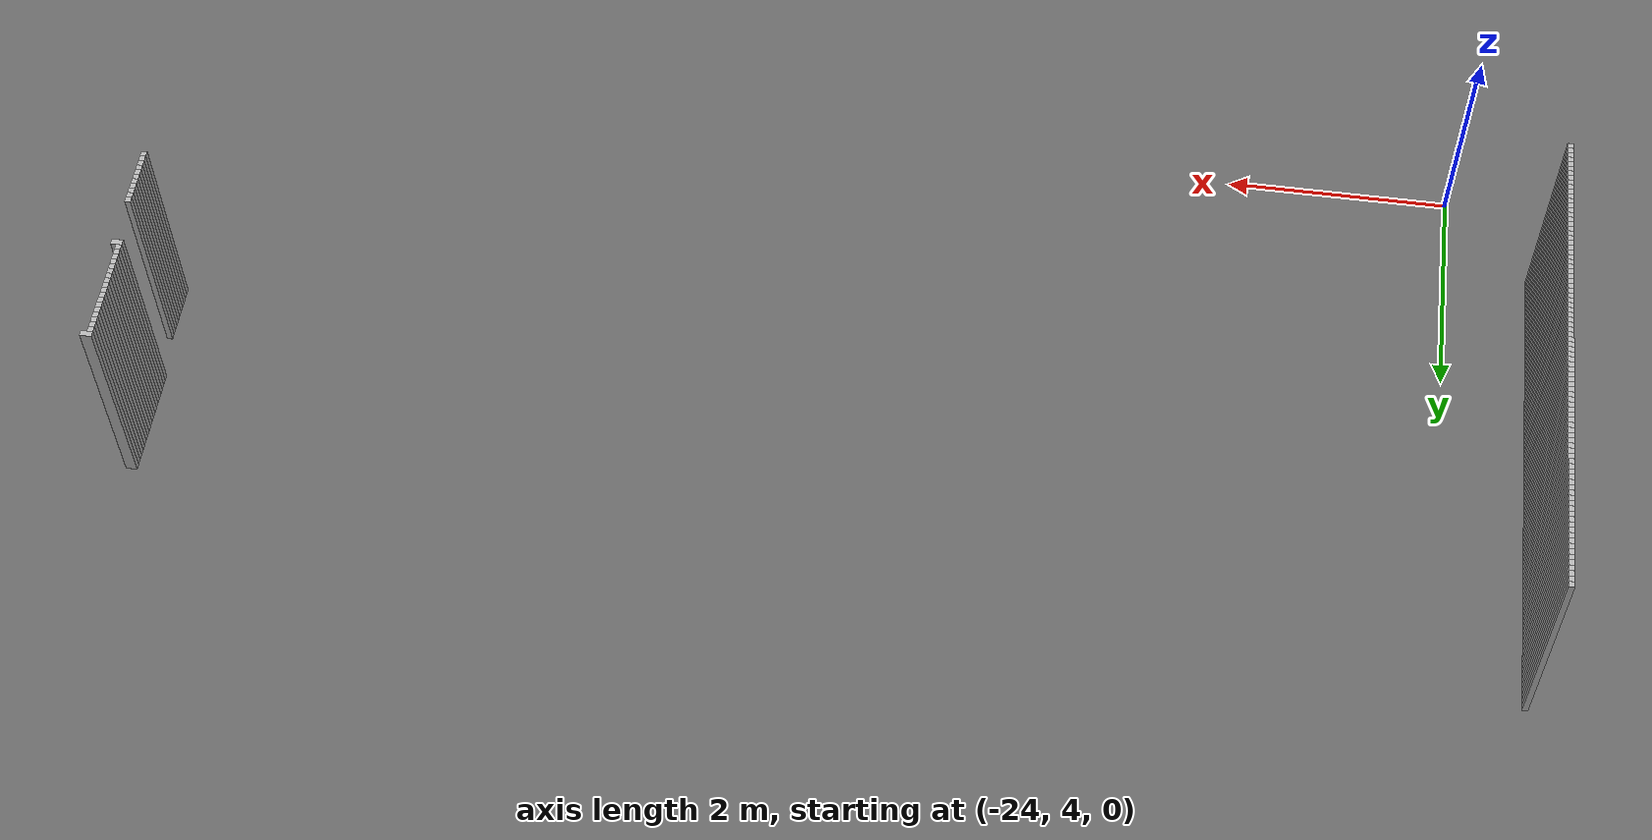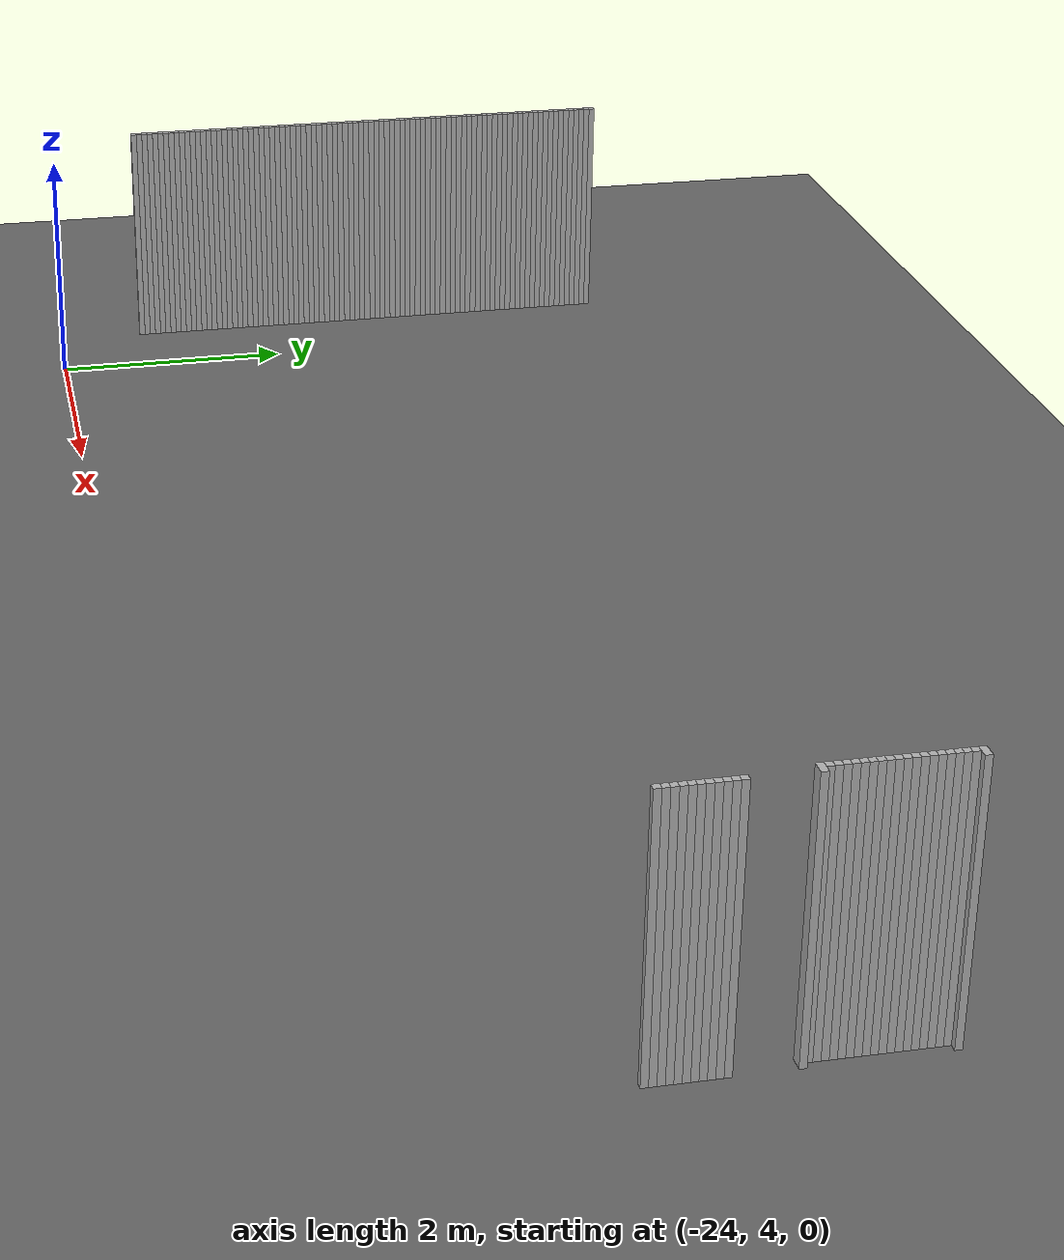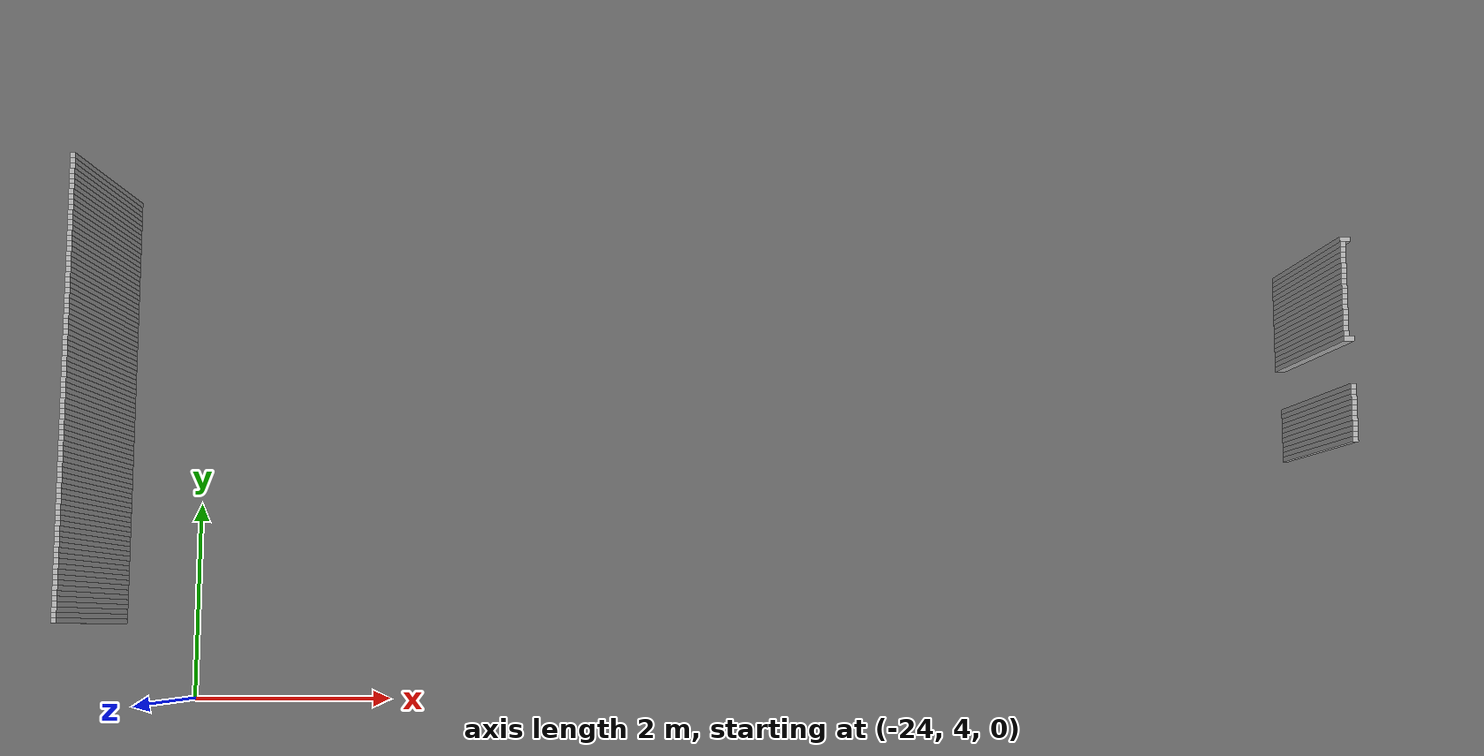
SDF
<sdf version="1.8">
 <world name="real_map">
  <model name="ground">
   <static>true</static>
   <link name="l">
    <collision name="c"><geometry><plane><normal>0 0 1</normal><size>100 100</size></plane></geometry></collision>
    <visual name="v">
     <geometry><plane><normal>0 0 1</normal><size>100 100</size></plane></geometry>
     <material><ambient>0.3 0.3 0.3 1</ambient><diffuse>0.4 0.4 0.4 1</diffuse></material>
    </visual>
   </link>
  </model>
  <model name="walls">
   <static>true</static>
   <link name="w477">
    <pose>-24.766 9.192 1.000 0 0 0</pose>
    <collision name="c"><geometry><box><size>0.050 0.050 2.000</size></box></geometry></collision>
    <visual name="v">
     <geometry><box><size>0.050 0.050 2.000</size></box></geometry>
     <material><ambient>0.7 0.7 0.7 1</ambient><diffuse>0.7 0.7 0.7 1</diffuse></material>
    </visual>
   </link>
   <link name="w479">
    <pose>-24.766 9.142 1.000 0 0 0</pose>
    <collision name="c"><geometry><box><size>0.050 0.050 2.000</size></box></geometry></collision>
    <visual name="v">
     <geometry><box><size>0.050 0.050 2.000</size></box></geometry>
     <material><ambient>0.7 0.7 0.7 1</ambient><diffuse>0.7 0.7 0.7 1</diffuse></material>
    </visual>
   </link>
   <link name="w481">
    <pose>-24.766 9.092 1.000 0 0 0</pose>
    <collision name="c"><geometry><box><size>0.050 0.050 2.000</size></box></geometry></collision>
    <visual name="v">
     <geometry><box><size>0.050 0.050 2.000</size></box></geometry>
     <material><ambient>0.7 0.7 0.7 1</ambient><diffuse>0.7 0.7 0.7 1</diffuse></material>
    </visual>
   </link>
   <link name="w483">
    <pose>-24.766 9.042 1.000 0 0 0</pose>
    <collision name="c"><geometry><box><size>0.050 0.050 2.000</size></box></geometry></collision>
    <visual name="v">
     <geometry><box><size>0.050 0.050 2.000</size></box></geometry>
     <material><ambient>0.7 0.7 0.7 1</ambient><diffuse>0.7 0.7 0.7 1</diffuse></material>
    </visual>
   </link>
   <link name="w485">
    <pose>-24.766 8.992 1.000 0 0 0</pose>
    <collision name="c"><geometry><box><size>0.050 0.050 2.000</size></box></geometry></collision>
    <visual name="v">
     <geometry><box><size>0.050 0.050 2.000</size></box></geometry>
     <material><ambient>0.7 0.7 0.7 1</ambient><diffuse>0.7 0.7 0.7 1</diffuse></material>
    </visual>
   </link>
   <link name="w487">
    <pose>-24.766 8.942 1.000 0 0 0</pose>
    <collision name="c"><geometry><box><size>0.050 0.050 2.000</size></box></geometry></collision>
    <visual name="v">
     <geometry><box><size>0.050 0.050 2.000</size></box></geometry>
     <material><ambient>0.7 0.7 0.7 1</ambient><diffuse>0.7 0.7 0.7 1</diffuse></material>
    </visual>
   </link>
   <link name="w489">
    <pose>-24.766 8.892 1.000 0 0 0</pose>
    <collision name="c"><geometry><box><size>0.050 0.050 2.000</size></box></geometry></collision>
    <visual name="v">
     <geometry><box><size>0.050 0.050 2.000</size></box></geometry>
     <material><ambient>0.7 0.7 0.7 1</ambient><diffuse>0.7 0.7 0.7 1</diffuse></material>
    </visual>
   </link>
   <link name="w491">
    <pose>-24.766 8.842 1.000 0 0 0</pose>
    <collision name="c"><geometry><box><size>0.050 0.050 2.000</size></box></geometry></collision>
    <visual name="v">
     <geometry><box><size>0.050 0.050 2.000</size></box></geometry>
     <material><ambient>0.7 0.7 0.7 1</ambient><diffuse>0.7 0.7 0.7 1</diffuse></material>
    </visual>
   </link>
   <link name="w493">
    <pose>-24.766 8.792 1.000 0 0 0</pose>
    <collision name="c"><geometry><box><size>0.050 0.050 2.000</size></box></geometry></collision>
    <visual name="v">
     <geometry><box><size>0.050 0.050 2.000</size></box></geometry>
     <material><ambient>0.7 0.7 0.7 1</ambient><diffuse>0.7 0.7 0.7 1</diffuse></material>
    </visual>
   </link>
   <link name="w496">
    <pose>-24.766 8.742 1.000 0 0 0</pose>
    <collision name="c"><geometry><box><size>0.050 0.050 2.000</size></box></geometry></collision>
    <visual name="v">
     <geometry><box><size>0.050 0.050 2.000</size></box></geometry>
     <material><ambient>0.7 0.7 0.7 1</ambient><diffuse>0.7 0.7 0.7 1</diffuse></material>
    </visual>
   </link>
   <link name="w501">
    <pose>-24.766 8.692 1.000 0 0 0</pose>
    <collision name="c"><geometry><box><size>0.050 0.050 2.000</size></box></geometry></collision>
    <visual name="v">
     <geometry><box><size>0.050 0.050 2.000</size></box></geometry>
     <material><ambient>0.7 0.7 0.7 1</ambient><diffuse>0.7 0.7 0.7 1</diffuse></material>
    </visual>
   </link>
   <link name="w506">
    <pose>-24.766 8.642 1.000 0 0 0</pose>
    <collision name="c"><geometry><box><size>0.050 0.050 2.000</size></box></geometry></collision>
    <visual name="v">
     <geometry><box><size>0.050 0.050 2.000</size></box></geometry>
     <material><ambient>0.7 0.7 0.7 1</ambient><diffuse>0.7 0.7 0.7 1</diffuse></material>
    </visual>
   </link>
   <link name="w511">
    <pose>-24.766 8.592 1.000 0 0 0</pose>
    <collision name="c"><geometry><box><size>0.050 0.050 2.000</size></box></geometry></collision>
    <visual name="v">
     <geometry><box><size>0.050 0.050 2.000</size></box></geometry>
     <material><ambient>0.7 0.7 0.7 1</ambient><diffuse>0.7 0.7 0.7 1</diffuse></material>
    </visual>
   </link>
   <link name="w515">
    <pose>-24.766 8.542 1.000 0 0 0</pose>
    <collision name="c"><geometry><box><size>0.050 0.050 2.000</size></box></geometry></collision>
    <visual name="v">
     <geometry><box><size>0.050 0.050 2.000</size></box></geometry>
     <material><ambient>0.7 0.7 0.7 1</ambient><diffuse>0.7 0.7 0.7 1</diffuse></material>
    </visual>
   </link>
   <link name="w519">
    <pose>-24.766 8.492 1.000 0 0 0</pose>
    <collision name="c"><geometry><box><size>0.050 0.050 2.000</size></box></geometry></collision>
    <visual name="v">
     <geometry><box><size>0.050 0.050 2.000</size></box></geometry>
     <material><ambient>0.7 0.7 0.7 1</ambient><diffuse>0.7 0.7 0.7 1</diffuse></material>
    </visual>
   </link>
   <link name="w523">
    <pose>-24.766 8.442 1.000 0 0 0</pose>
    <collision name="c"><geometry><box><size>0.050 0.050 2.000</size></box></geometry></collision>
    <visual name="v">
     <geometry><box><size>0.050 0.050 2.000</size></box></geometry>
     <material><ambient>0.7 0.7 0.7 1</ambient><diffuse>0.7 0.7 0.7 1</diffuse></material>
    </visual>
   </link>
   <link name="w527">
    <pose>-24.766 8.392 1.000 0 0 0</pose>
    <collision name="c"><geometry><box><size>0.050 0.050 2.000</size></box></geometry></collision>
    <visual name="v">
     <geometry><box><size>0.050 0.050 2.000</size></box></geometry>
     <material><ambient>0.7 0.7 0.7 1</ambient><diffuse>0.7 0.7 0.7 1</diffuse></material>
    </visual>
   </link>
   <link name="w528">
    <pose>-12.691 8.392 1.000 0 0 0</pose>
    <collision name="c"><geometry><box><size>0.100 0.050 2.000</size></box></geometry></collision>
    <visual name="v">
     <geometry><box><size>0.100 0.050 2.000</size></box></geometry>
     <material><ambient>0.7 0.7 0.7 1</ambient><diffuse>0.7 0.7 0.7 1</diffuse></material>
    </visual>
   </link>
   <link name="w531">
    <pose>-24.766 8.342 1.000 0 0 0</pose>
    <collision name="c"><geometry><box><size>0.050 0.050 2.000</size></box></geometry></collision>
    <visual name="v">
     <geometry><box><size>0.050 0.050 2.000</size></box></geometry>
     <material><ambient>0.7 0.7 0.7 1</ambient><diffuse>0.7 0.7 0.7 1</diffuse></material>
    </visual>
   </link>
   <link name="w532">
    <pose>-12.716 8.342 1.000 0 0 0</pose>
    <collision name="c"><geometry><box><size>0.050 0.050 2.000</size></box></geometry></collision>
    <visual name="v">
     <geometry><box><size>0.050 0.050 2.000</size></box></geometry>
     <material><ambient>0.7 0.7 0.7 1</ambient><diffuse>0.7 0.7 0.7 1</diffuse></material>
    </visual>
   </link>
   <link name="w535">
    <pose>-24.766 8.292 1.000 0 0 0</pose>
    <collision name="c"><geometry><box><size>0.050 0.050 2.000</size></box></geometry></collision>
    <visual name="v">
     <geometry><box><size>0.050 0.050 2.000</size></box></geometry>
     <material><ambient>0.7 0.7 0.7 1</ambient><diffuse>0.7 0.7 0.7 1</diffuse></material>
    </visual>
   </link>
   <link name="w536">
    <pose>-12.716 8.292 1.000 0 0 0</pose>
    <collision name="c"><geometry><box><size>0.050 0.050 2.000</size></box></geometry></collision>
    <visual name="v">
     <geometry><box><size>0.050 0.050 2.000</size></box></geometry>
     <material><ambient>0.7 0.7 0.7 1</ambient><diffuse>0.7 0.7 0.7 1</diffuse></material>
    </visual>
   </link>
   <link name="w539">
    <pose>-24.766 8.242 1.000 0 0 0</pose>
    <collision name="c"><geometry><box><size>0.050 0.050 2.000</size></box></geometry></collision>
    <visual name="v">
     <geometry><box><size>0.050 0.050 2.000</size></box></geometry>
     <material><ambient>0.7 0.7 0.7 1</ambient><diffuse>0.7 0.7 0.7 1</diffuse></material>
    </visual>
   </link>
   <link name="w540">
    <pose>-12.716 8.242 1.000 0 0 0</pose>
    <collision name="c"><geometry><box><size>0.050 0.050 2.000</size></box></geometry></collision>
    <visual name="v">
     <geometry><box><size>0.050 0.050 2.000</size></box></geometry>
     <material><ambient>0.7 0.7 0.7 1</ambient><diffuse>0.7 0.7 0.7 1</diffuse></material>
    </visual>
   </link>
   <link name="w543">
    <pose>-24.766 8.192 1.000 0 0 0</pose>
    <collision name="c"><geometry><box><size>0.050 0.050 2.000</size></box></geometry></collision>
    <visual name="v">
     <geometry><box><size>0.050 0.050 2.000</size></box></geometry>
     <material><ambient>0.7 0.7 0.7 1</ambient><diffuse>0.7 0.7 0.7 1</diffuse></material>
    </visual>
   </link>
   <link name="w544">
    <pose>-12.716 8.192 1.000 0 0 0</pose>
    <collision name="c"><geometry><box><size>0.050 0.050 2.000</size></box></geometry></collision>
    <visual name="v">
     <geometry><box><size>0.050 0.050 2.000</size></box></geometry>
     <material><ambient>0.7 0.7 0.7 1</ambient><diffuse>0.7 0.7 0.7 1</diffuse></material>
    </visual>
   </link>
   <link name="w547">
    <pose>-24.766 8.142 1.000 0 0 0</pose>
    <collision name="c"><geometry><box><size>0.050 0.050 2.000</size></box></geometry></collision>
    <visual name="v">
     <geometry><box><size>0.050 0.050 2.000</size></box></geometry>
     <material><ambient>0.7 0.7 0.7 1</ambient><diffuse>0.7 0.7 0.7 1</diffuse></material>
    </visual>
   </link>
   <link name="w548">
    <pose>-12.716 8.142 1.000 0 0 0</pose>
    <collision name="c"><geometry><box><size>0.050 0.050 2.000</size></box></geometry></collision>
    <visual name="v">
     <geometry><box><size>0.050 0.050 2.000</size></box></geometry>
     <material><ambient>0.7 0.7 0.7 1</ambient><diffuse>0.7 0.7 0.7 1</diffuse></material>
    </visual>
   </link>
   <link name="w551">
    <pose>-24.766 8.092 1.000 0 0 0</pose>
    <collision name="c"><geometry><box><size>0.050 0.050 2.000</size></box></geometry></collision>
    <visual name="v">
     <geometry><box><size>0.050 0.050 2.000</size></box></geometry>
     <material><ambient>0.7 0.7 0.7 1</ambient><diffuse>0.7 0.7 0.7 1</diffuse></material>
    </visual>
   </link>
   <link name="w552">
    <pose>-12.716 8.092 1.000 0 0 0</pose>
    <collision name="c"><geometry><box><size>0.050 0.050 2.000</size></box></geometry></collision>
    <visual name="v">
     <geometry><box><size>0.050 0.050 2.000</size></box></geometry>
     <material><ambient>0.7 0.7 0.7 1</ambient><diffuse>0.7 0.7 0.7 1</diffuse></material>
    </visual>
   </link>
   <link name="w555">
    <pose>-24.766 8.042 1.000 0 0 0</pose>
    <collision name="c"><geometry><box><size>0.050 0.050 2.000</size></box></geometry></collision>
    <visual name="v">
     <geometry><box><size>0.050 0.050 2.000</size></box></geometry>
     <material><ambient>0.7 0.7 0.7 1</ambient><diffuse>0.7 0.7 0.7 1</diffuse></material>
    </visual>
   </link>
   <link name="w556">
    <pose>-12.716 8.042 1.000 0 0 0</pose>
    <collision name="c"><geometry><box><size>0.050 0.050 2.000</size></box></geometry></collision>
    <visual name="v">
     <geometry><box><size>0.050 0.050 2.000</size></box></geometry>
     <material><ambient>0.7 0.7 0.7 1</ambient><diffuse>0.7 0.7 0.7 1</diffuse></material>
    </visual>
   </link>
   <link name="w559">
    <pose>-24.766 7.992 1.000 0 0 0</pose>
    <collision name="c"><geometry><box><size>0.050 0.050 2.000</size></box></geometry></collision>
    <visual name="v">
     <geometry><box><size>0.050 0.050 2.000</size></box></geometry>
     <material><ambient>0.7 0.7 0.7 1</ambient><diffuse>0.7 0.7 0.7 1</diffuse></material>
    </visual>
   </link>
   <link name="w560">
    <pose>-12.716 7.992 1.000 0 0 0</pose>
    <collision name="c"><geometry><box><size>0.050 0.050 2.000</size></box></geometry></collision>
    <visual name="v">
     <geometry><box><size>0.050 0.050 2.000</size></box></geometry>
     <material><ambient>0.7 0.7 0.7 1</ambient><diffuse>0.7 0.7 0.7 1</diffuse></material>
    </visual>
   </link>
   <link name="w563">
    <pose>-24.766 7.942 1.000 0 0 0</pose>
    <collision name="c"><geometry><box><size>0.050 0.050 2.000</size></box></geometry></collision>
    <visual name="v">
     <geometry><box><size>0.050 0.050 2.000</size></box></geometry>
     <material><ambient>0.7 0.7 0.7 1</ambient><diffuse>0.7 0.7 0.7 1</diffuse></material>
    </visual>
   </link>
   <link name="w564">
    <pose>-12.716 7.942 1.000 0 0 0</pose>
    <collision name="c"><geometry><box><size>0.050 0.050 2.000</size></box></geometry></collision>
    <visual name="v">
     <geometry><box><size>0.050 0.050 2.000</size></box></geometry>
     <material><ambient>0.7 0.7 0.7 1</ambient><diffuse>0.7 0.7 0.7 1</diffuse></material>
    </visual>
   </link>
   <link name="w567">
    <pose>-24.766 7.892 1.000 0 0 0</pose>
    <collision name="c"><geometry><box><size>0.050 0.050 2.000</size></box></geometry></collision>
    <visual name="v">
     <geometry><box><size>0.050 0.050 2.000</size></box></geometry>
     <material><ambient>0.7 0.7 0.7 1</ambient><diffuse>0.7 0.7 0.7 1</diffuse></material>
    </visual>
   </link>
   <link name="w568">
    <pose>-12.716 7.892 1.000 0 0 0</pose>
    <collision name="c"><geometry><box><size>0.050 0.050 2.000</size></box></geometry></collision>
    <visual name="v">
     <geometry><box><size>0.050 0.050 2.000</size></box></geometry>
     <material><ambient>0.7 0.7 0.7 1</ambient><diffuse>0.7 0.7 0.7 1</diffuse></material>
    </visual>
   </link>
   <link name="w571">
    <pose>-24.766 7.842 1.000 0 0 0</pose>
    <collision name="c"><geometry><box><size>0.050 0.050 2.000</size></box></geometry></collision>
    <visual name="v">
     <geometry><box><size>0.050 0.050 2.000</size></box></geometry>
     <material><ambient>0.7 0.7 0.7 1</ambient><diffuse>0.7 0.7 0.7 1</diffuse></material>
    </visual>
   </link>
   <link name="w572">
    <pose>-12.716 7.842 1.000 0 0 0</pose>
    <collision name="c"><geometry><box><size>0.050 0.050 2.000</size></box></geometry></collision>
    <visual name="v">
     <geometry><box><size>0.050 0.050 2.000</size></box></geometry>
     <material><ambient>0.7 0.7 0.7 1</ambient><diffuse>0.7 0.7 0.7 1</diffuse></material>
    </visual>
   </link>
   <link name="w575">
    <pose>-24.766 7.792 1.000 0 0 0</pose>
    <collision name="c"><geometry><box><size>0.050 0.050 2.000</size></box></geometry></collision>
    <visual name="v">
     <geometry><box><size>0.050 0.050 2.000</size></box></geometry>
     <material><ambient>0.7 0.7 0.7 1</ambient><diffuse>0.7 0.7 0.7 1</diffuse></material>
    </visual>
   </link>
   <link name="w576">
    <pose>-12.716 7.792 1.000 0 0 0</pose>
    <collision name="c"><geometry><box><size>0.050 0.050 2.000</size></box></geometry></collision>
    <visual name="v">
     <geometry><box><size>0.050 0.050 2.000</size></box></geometry>
     <material><ambient>0.7 0.7 0.7 1</ambient><diffuse>0.7 0.7 0.7 1</diffuse></material>
    </visual>
   </link>
   <link name="w579">
    <pose>-24.766 7.742 1.000 0 0 0</pose>
    <collision name="c"><geometry><box><size>0.050 0.050 2.000</size></box></geometry></collision>
    <visual name="v">
     <geometry><box><size>0.050 0.050 2.000</size></box></geometry>
     <material><ambient>0.7 0.7 0.7 1</ambient><diffuse>0.7 0.7 0.7 1</diffuse></material>
    </visual>
   </link>
   <link name="w580">
    <pose>-12.716 7.742 1.000 0 0 0</pose>
    <collision name="c"><geometry><box><size>0.050 0.050 2.000</size></box></geometry></collision>
    <visual name="v">
     <geometry><box><size>0.050 0.050 2.000</size></box></geometry>
     <material><ambient>0.7 0.7 0.7 1</ambient><diffuse>0.7 0.7 0.7 1</diffuse></material>
    </visual>
   </link>
   <link name="w583">
    <pose>-24.766 7.692 1.000 0 0 0</pose>
    <collision name="c"><geometry><box><size>0.050 0.050 2.000</size></box></geometry></collision>
    <visual name="v">
     <geometry><box><size>0.050 0.050 2.000</size></box></geometry>
     <material><ambient>0.7 0.7 0.7 1</ambient><diffuse>0.7 0.7 0.7 1</diffuse></material>
    </visual>
   </link>
   <link name="w584">
    <pose>-12.716 7.692 1.000 0 0 0</pose>
    <collision name="c"><geometry><box><size>0.050 0.050 2.000</size></box></geometry></collision>
    <visual name="v">
     <geometry><box><size>0.050 0.050 2.000</size></box></geometry>
     <material><ambient>0.7 0.7 0.7 1</ambient><diffuse>0.7 0.7 0.7 1</diffuse></material>
    </visual>
   </link>
   <link name="w587">
    <pose>-24.766 7.642 1.000 0 0 0</pose>
    <collision name="c"><geometry><box><size>0.050 0.050 2.000</size></box></geometry></collision>
    <visual name="v">
     <geometry><box><size>0.050 0.050 2.000</size></box></geometry>
     <material><ambient>0.7 0.7 0.7 1</ambient><diffuse>0.7 0.7 0.7 1</diffuse></material>
    </visual>
   </link>
   <link name="w588">
    <pose>-12.716 7.642 1.000 0 0 0</pose>
    <collision name="c"><geometry><box><size>0.050 0.050 2.000</size></box></geometry></collision>
    <visual name="v">
     <geometry><box><size>0.050 0.050 2.000</size></box></geometry>
     <material><ambient>0.7 0.7 0.7 1</ambient><diffuse>0.7 0.7 0.7 1</diffuse></material>
    </visual>
   </link>
   <link name="w591">
    <pose>-24.766 7.592 1.000 0 0 0</pose>
    <collision name="c"><geometry><box><size>0.050 0.050 2.000</size></box></geometry></collision>
    <visual name="v">
     <geometry><box><size>0.050 0.050 2.000</size></box></geometry>
     <material><ambient>0.7 0.7 0.7 1</ambient><diffuse>0.7 0.7 0.7 1</diffuse></material>
    </visual>
   </link>
   <link name="w592">
    <pose>-12.716 7.592 1.000 0 0 0</pose>
    <collision name="c"><geometry><box><size>0.050 0.050 2.000</size></box></geometry></collision>
    <visual name="v">
     <geometry><box><size>0.050 0.050 2.000</size></box></geometry>
     <material><ambient>0.7 0.7 0.7 1</ambient><diffuse>0.7 0.7 0.7 1</diffuse></material>
    </visual>
   </link>
   <link name="w595">
    <pose>-24.766 7.542 1.000 0 0 0</pose>
    <collision name="c"><geometry><box><size>0.050 0.050 2.000</size></box></geometry></collision>
    <visual name="v">
     <geometry><box><size>0.050 0.050 2.000</size></box></geometry>
     <material><ambient>0.7 0.7 0.7 1</ambient><diffuse>0.7 0.7 0.7 1</diffuse></material>
    </visual>
   </link>
   <link name="w596">
    <pose>-12.716 7.542 1.000 0 0 0</pose>
    <collision name="c"><geometry><box><size>0.050 0.050 2.000</size></box></geometry></collision>
    <visual name="v">
     <geometry><box><size>0.050 0.050 2.000</size></box></geometry>
     <material><ambient>0.7 0.7 0.7 1</ambient><diffuse>0.7 0.7 0.7 1</diffuse></material>
    </visual>
   </link>
   <link name="w599">
    <pose>-24.766 7.492 1.000 0 0 0</pose>
    <collision name="c"><geometry><box><size>0.050 0.050 2.000</size></box></geometry></collision>
    <visual name="v">
     <geometry><box><size>0.050 0.050 2.000</size></box></geometry>
     <material><ambient>0.7 0.7 0.7 1</ambient><diffuse>0.7 0.7 0.7 1</diffuse></material>
    </visual>
   </link>
   <link name="w600">
    <pose>-12.716 7.492 1.000 0 0 0</pose>
    <collision name="c"><geometry><box><size>0.050 0.050 2.000</size></box></geometry></collision>
    <visual name="v">
     <geometry><box><size>0.050 0.050 2.000</size></box></geometry>
     <material><ambient>0.7 0.7 0.7 1</ambient><diffuse>0.7 0.7 0.7 1</diffuse></material>
    </visual>
   </link>
   <link name="w603">
    <pose>-24.766 7.442 1.000 0 0 0</pose>
    <collision name="c"><geometry><box><size>0.050 0.050 2.000</size></box></geometry></collision>
    <visual name="v">
     <geometry><box><size>0.050 0.050 2.000</size></box></geometry>
     <material><ambient>0.7 0.7 0.7 1</ambient><diffuse>0.7 0.7 0.7 1</diffuse></material>
    </visual>
   </link>
   <link name="w604">
    <pose>-12.691 7.442 1.000 0 0 0</pose>
    <collision name="c"><geometry><box><size>0.100 0.050 2.000</size></box></geometry></collision>
    <visual name="v">
     <geometry><box><size>0.100 0.050 2.000</size></box></geometry>
     <material><ambient>0.7 0.7 0.7 1</ambient><diffuse>0.7 0.7 0.7 1</diffuse></material>
    </visual>
   </link>
   <link name="w607">
    <pose>-24.766 7.392 1.000 0 0 0</pose>
    <collision name="c"><geometry><box><size>0.050 0.050 2.000</size></box></geometry></collision>
    <visual name="v">
     <geometry><box><size>0.050 0.050 2.000</size></box></geometry>
     <material><ambient>0.7 0.7 0.7 1</ambient><diffuse>0.7 0.7 0.7 1</diffuse></material>
    </visual>
   </link>
   <link name="w611">
    <pose>-24.766 7.342 1.000 0 0 0</pose>
    <collision name="c"><geometry><box><size>0.050 0.050 2.000</size></box></geometry></collision>
    <visual name="v">
     <geometry><box><size>0.050 0.050 2.000</size></box></geometry>
     <material><ambient>0.7 0.7 0.7 1</ambient><diffuse>0.7 0.7 0.7 1</diffuse></material>
    </visual>
   </link>
   <link name="w616">
    <pose>-24.766 7.292 1.000 0 0 0</pose>
    <collision name="c"><geometry><box><size>0.050 0.050 2.000</size></box></geometry></collision>
    <visual name="v">
     <geometry><box><size>0.050 0.050 2.000</size></box></geometry>
     <material><ambient>0.7 0.7 0.7 1</ambient><diffuse>0.7 0.7 0.7 1</diffuse></material>
    </visual>
   </link>
   <link name="w621">
    <pose>-24.766 7.242 1.000 0 0 0</pose>
    <collision name="c"><geometry><box><size>0.050 0.050 2.000</size></box></geometry></collision>
    <visual name="v">
     <geometry><box><size>0.050 0.050 2.000</size></box></geometry>
     <material><ambient>0.7 0.7 0.7 1</ambient><diffuse>0.7 0.7 0.7 1</diffuse></material>
    </visual>
   </link>
   <link name="w626">
    <pose>-24.766 7.192 1.000 0 0 0</pose>
    <collision name="c"><geometry><box><size>0.050 0.050 2.000</size></box></geometry></collision>
    <visual name="v">
     <geometry><box><size>0.050 0.050 2.000</size></box></geometry>
     <material><ambient>0.7 0.7 0.7 1</ambient><diffuse>0.7 0.7 0.7 1</diffuse></material>
    </visual>
   </link>
   <link name="w631">
    <pose>-24.766 7.142 1.000 0 0 0</pose>
    <collision name="c"><geometry><box><size>0.050 0.050 2.000</size></box></geometry></collision>
    <visual name="v">
     <geometry><box><size>0.050 0.050 2.000</size></box></geometry>
     <material><ambient>0.7 0.7 0.7 1</ambient><diffuse>0.7 0.7 0.7 1</diffuse></material>
    </visual>
   </link>
   <link name="w636">
    <pose>-24.766 7.092 1.000 0 0 0</pose>
    <collision name="c"><geometry><box><size>0.050 0.050 2.000</size></box></geometry></collision>
    <visual name="v">
     <geometry><box><size>0.050 0.050 2.000</size></box></geometry>
     <material><ambient>0.7 0.7 0.7 1</ambient><diffuse>0.7 0.7 0.7 1</diffuse></material>
    </visual>
   </link>
   <link name="w641">
    <pose>-24.766 7.042 1.000 0 0 0</pose>
    <collision name="c"><geometry><box><size>0.050 0.050 2.000</size></box></geometry></collision>
    <visual name="v">
     <geometry><box><size>0.050 0.050 2.000</size></box></geometry>
     <material><ambient>0.7 0.7 0.7 1</ambient><diffuse>0.7 0.7 0.7 1</diffuse></material>
    </visual>
   </link>
   <link name="w646">
    <pose>-24.766 6.992 1.000 0 0 0</pose>
    <collision name="c"><geometry><box><size>0.050 0.050 2.000</size></box></geometry></collision>
    <visual name="v">
     <geometry><box><size>0.050 0.050 2.000</size></box></geometry>
     <material><ambient>0.7 0.7 0.7 1</ambient><diffuse>0.7 0.7 0.7 1</diffuse></material>
    </visual>
   </link>
   <link name="w647">
    <pose>-12.666 6.992 1.000 0 0 0</pose>
    <collision name="c"><geometry><box><size>0.050 0.050 2.000</size></box></geometry></collision>
    <visual name="v">
     <geometry><box><size>0.050 0.050 2.000</size></box></geometry>
     <material><ambient>0.7 0.7 0.7 1</ambient><diffuse>0.7 0.7 0.7 1</diffuse></material>
    </visual>
   </link>
   <link name="w651">
    <pose>-24.766 6.942 1.000 0 0 0</pose>
    <collision name="c"><geometry><box><size>0.050 0.050 2.000</size></box></geometry></collision>
    <visual name="v">
     <geometry><box><size>0.050 0.050 2.000</size></box></geometry>
     <material><ambient>0.7 0.7 0.7 1</ambient><diffuse>0.7 0.7 0.7 1</diffuse></material>
    </visual>
   </link>
   <link name="w652">
    <pose>-12.666 6.942 1.000 0 0 0</pose>
    <collision name="c"><geometry><box><size>0.050 0.050 2.000</size></box></geometry></collision>
    <visual name="v">
     <geometry><box><size>0.050 0.050 2.000</size></box></geometry>
     <material><ambient>0.7 0.7 0.7 1</ambient><diffuse>0.7 0.7 0.7 1</diffuse></material>
    </visual>
   </link>
   <link name="w656">
    <pose>-24.766 6.892 1.000 0 0 0</pose>
    <collision name="c"><geometry><box><size>0.050 0.050 2.000</size></box></geometry></collision>
    <visual name="v">
     <geometry><box><size>0.050 0.050 2.000</size></box></geometry>
     <material><ambient>0.7 0.7 0.7 1</ambient><diffuse>0.7 0.7 0.7 1</diffuse></material>
    </visual>
   </link>
   <link name="w657">
    <pose>-12.666 6.892 1.000 0 0 0</pose>
    <collision name="c"><geometry><box><size>0.050 0.050 2.000</size></box></geometry></collision>
    <visual name="v">
     <geometry><box><size>0.050 0.050 2.000</size></box></geometry>
     <material><ambient>0.7 0.7 0.7 1</ambient><diffuse>0.7 0.7 0.7 1</diffuse></material>
    </visual>
   </link>
   <link name="w661">
    <pose>-24.766 6.842 1.000 0 0 0</pose>
    <collision name="c"><geometry><box><size>0.050 0.050 2.000</size></box></geometry></collision>
    <visual name="v">
     <geometry><box><size>0.050 0.050 2.000</size></box></geometry>
     <material><ambient>0.7 0.7 0.7 1</ambient><diffuse>0.7 0.7 0.7 1</diffuse></material>
    </visual>
   </link>
   <link name="w662">
    <pose>-12.666 6.842 1.000 0 0 0</pose>
    <collision name="c"><geometry><box><size>0.050 0.050 2.000</size></box></geometry></collision>
    <visual name="v">
     <geometry><box><size>0.050 0.050 2.000</size></box></geometry>
     <material><ambient>0.7 0.7 0.7 1</ambient><diffuse>0.7 0.7 0.7 1</diffuse></material>
    </visual>
   </link>
   <link name="w666">
    <pose>-24.766 6.792 1.000 0 0 0</pose>
    <collision name="c"><geometry><box><size>0.050 0.050 2.000</size></box></geometry></collision>
    <visual name="v">
     <geometry><box><size>0.050 0.050 2.000</size></box></geometry>
     <material><ambient>0.7 0.7 0.7 1</ambient><diffuse>0.7 0.7 0.7 1</diffuse></material>
    </visual>
   </link>
   <link name="w667">
    <pose>-12.666 6.792 1.000 0 0 0</pose>
    <collision name="c"><geometry><box><size>0.050 0.050 2.000</size></box></geometry></collision>
    <visual name="v">
     <geometry><box><size>0.050 0.050 2.000</size></box></geometry>
     <material><ambient>0.7 0.7 0.7 1</ambient><diffuse>0.7 0.7 0.7 1</diffuse></material>
    </visual>
   </link>
   <link name="w671">
    <pose>-24.766 6.742 1.000 0 0 0</pose>
    <collision name="c"><geometry><box><size>0.050 0.050 2.000</size></box></geometry></collision>
    <visual name="v">
     <geometry><box><size>0.050 0.050 2.000</size></box></geometry>
     <material><ambient>0.7 0.7 0.7 1</ambient><diffuse>0.7 0.7 0.7 1</diffuse></material>
    </visual>
   </link>
   <link name="w672">
    <pose>-12.666 6.742 1.000 0 0 0</pose>
    <collision name="c"><geometry><box><size>0.050 0.050 2.000</size></box></geometry></collision>
    <visual name="v">
     <geometry><box><size>0.050 0.050 2.000</size></box></geometry>
     <material><ambient>0.7 0.7 0.7 1</ambient><diffuse>0.7 0.7 0.7 1</diffuse></material>
    </visual>
   </link>
   <link name="w676">
    <pose>-24.766 6.692 1.000 0 0 0</pose>
    <collision name="c"><geometry><box><size>0.050 0.050 2.000</size></box></geometry></collision>
    <visual name="v">
     <geometry><box><size>0.050 0.050 2.000</size></box></geometry>
     <material><ambient>0.7 0.7 0.7 1</ambient><diffuse>0.7 0.7 0.7 1</diffuse></material>
    </visual>
   </link>
   <link name="w677">
    <pose>-12.666 6.692 1.000 0 0 0</pose>
    <collision name="c"><geometry><box><size>0.050 0.050 2.000</size></box></geometry></collision>
    <visual name="v">
     <geometry><box><size>0.050 0.050 2.000</size></box></geometry>
     <material><ambient>0.7 0.7 0.7 1</ambient><diffuse>0.7 0.7 0.7 1</diffuse></material>
    </visual>
   </link>
   <link name="w680">
    <pose>-24.766 6.642 1.000 0 0 0</pose>
    <collision name="c"><geometry><box><size>0.050 0.050 2.000</size></box></geometry></collision>
    <visual name="v">
     <geometry><box><size>0.050 0.050 2.000</size></box></geometry>
     <material><ambient>0.7 0.7 0.7 1</ambient><diffuse>0.7 0.7 0.7 1</diffuse></material>
    </visual>
   </link>
   <link name="w681">
    <pose>-12.666 6.642 1.000 0 0 0</pose>
    <collision name="c"><geometry><box><size>0.050 0.050 2.000</size></box></geometry></collision>
    <visual name="v">
     <geometry><box><size>0.050 0.050 2.000</size></box></geometry>
     <material><ambient>0.7 0.7 0.7 1</ambient><diffuse>0.7 0.7 0.7 1</diffuse></material>
    </visual>
   </link>
   <link name="w684">
    <pose>-24.766 6.592 1.000 0 0 0</pose>
    <collision name="c"><geometry><box><size>0.050 0.050 2.000</size></box></geometry></collision>
    <visual name="v">
     <geometry><box><size>0.050 0.050 2.000</size></box></geometry>
     <material><ambient>0.7 0.7 0.7 1</ambient><diffuse>0.7 0.7 0.7 1</diffuse></material>
    </visual>
   </link>
   <link name="w685">
    <pose>-12.666 6.592 1.000 0 0 0</pose>
    <collision name="c"><geometry><box><size>0.050 0.050 2.000</size></box></geometry></collision>
    <visual name="v">
     <geometry><box><size>0.050 0.050 2.000</size></box></geometry>
     <material><ambient>0.7 0.7 0.7 1</ambient><diffuse>0.7 0.7 0.7 1</diffuse></material>
    </visual>
   </link>
   <link name="w688">
    <pose>-24.766 6.542 1.000 0 0 0</pose>
    <collision name="c"><geometry><box><size>0.050 0.050 2.000</size></box></geometry></collision>
    <visual name="v">
     <geometry><box><size>0.050 0.050 2.000</size></box></geometry>
     <material><ambient>0.7 0.7 0.7 1</ambient><diffuse>0.7 0.7 0.7 1</diffuse></material>
    </visual>
   </link>
   <link name="w689">
    <pose>-12.666 6.542 1.000 0 0 0</pose>
    <collision name="c"><geometry><box><size>0.050 0.050 2.000</size></box></geometry></collision>
    <visual name="v">
     <geometry><box><size>0.050 0.050 2.000</size></box></geometry>
     <material><ambient>0.7 0.7 0.7 1</ambient><diffuse>0.7 0.7 0.7 1</diffuse></material>
    </visual>
   </link>
   <link name="w692">
    <pose>-24.766 6.492 1.000 0 0 0</pose>
    <collision name="c"><geometry><box><size>0.050 0.050 2.000</size></box></geometry></collision>
    <visual name="v">
     <geometry><box><size>0.050 0.050 2.000</size></box></geometry>
     <material><ambient>0.7 0.7 0.7 1</ambient><diffuse>0.7 0.7 0.7 1</diffuse></material>
    </visual>
   </link>
   <link name="w693">
    <pose>-12.666 6.492 1.000 0 0 0</pose>
    <collision name="c"><geometry><box><size>0.050 0.050 2.000</size></box></geometry></collision>
    <visual name="v">
     <geometry><box><size>0.050 0.050 2.000</size></box></geometry>
     <material><ambient>0.7 0.7 0.7 1</ambient><diffuse>0.7 0.7 0.7 1</diffuse></material>
    </visual>
   </link>
   <link name="w696">
    <pose>-24.766 6.442 1.000 0 0 0</pose>
    <collision name="c"><geometry><box><size>0.050 0.050 2.000</size></box></geometry></collision>
    <visual name="v">
     <geometry><box><size>0.050 0.050 2.000</size></box></geometry>
     <material><ambient>0.7 0.7 0.7 1</ambient><diffuse>0.7 0.7 0.7 1</diffuse></material>
    </visual>
   </link>
   <link name="w700">
    <pose>-24.766 6.392 1.000 0 0 0</pose>
    <collision name="c"><geometry><box><size>0.050 0.050 2.000</size></box></geometry></collision>
    <visual name="v">
     <geometry><box><size>0.050 0.050 2.000</size></box></geometry>
     <material><ambient>0.7 0.7 0.7 1</ambient><diffuse>0.7 0.7 0.7 1</diffuse></material>
    </visual>
   </link>
   <link name="w704">
    <pose>-24.766 6.342 1.000 0 0 0</pose>
    <collision name="c"><geometry><box><size>0.050 0.050 2.000</size></box></geometry></collision>
    <visual name="v">
     <geometry><box><size>0.050 0.050 2.000</size></box></geometry>
     <material><ambient>0.7 0.7 0.7 1</ambient><diffuse>0.7 0.7 0.7 1</diffuse></material>
    </visual>
   </link>
   <link name="w708">
    <pose>-24.766 6.292 1.000 0 0 0</pose>
    <collision name="c"><geometry><box><size>0.050 0.050 2.000</size></box></geometry></collision>
    <visual name="v">
     <geometry><box><size>0.050 0.050 2.000</size></box></geometry>
     <material><ambient>0.7 0.7 0.7 1</ambient><diffuse>0.7 0.7 0.7 1</diffuse></material>
    </visual>
   </link>
   <link name="w712">
    <pose>-24.766 6.242 1.000 0 0 0</pose>
    <collision name="c"><geometry><box><size>0.050 0.050 2.000</size></box></geometry></collision>
    <visual name="v">
     <geometry><box><size>0.050 0.050 2.000</size></box></geometry>
     <material><ambient>0.7 0.7 0.7 1</ambient><diffuse>0.7 0.7 0.7 1</diffuse></material>
    </visual>
   </link>
   <link name="w716">
    <pose>-24.766 6.192 1.000 0 0 0</pose>
    <collision name="c"><geometry><box><size>0.050 0.050 2.000</size></box></geometry></collision>
    <visual name="v">
     <geometry><box><size>0.050 0.050 2.000</size></box></geometry>
     <material><ambient>0.7 0.7 0.7 1</ambient><diffuse>0.7 0.7 0.7 1</diffuse></material>
    </visual>
   </link>
   <link name="w720">
    <pose>-24.766 6.142 1.000 0 0 0</pose>
    <collision name="c"><geometry><box><size>0.050 0.050 2.000</size></box></geometry></collision>
    <visual name="v">
     <geometry><box><size>0.050 0.050 2.000</size></box></geometry>
     <material><ambient>0.7 0.7 0.7 1</ambient><diffuse>0.7 0.7 0.7 1</diffuse></material>
    </visual>
   </link>
   <link name="w724">
    <pose>-24.766 6.092 1.000 0 0 0</pose>
    <collision name="c"><geometry><box><size>0.050 0.050 2.000</size></box></geometry></collision>
    <visual name="v">
     <geometry><box><size>0.050 0.050 2.000</size></box></geometry>
     <material><ambient>0.7 0.7 0.7 1</ambient><diffuse>0.7 0.7 0.7 1</diffuse></material>
    </visual>
   </link>
   <link name="w728">
    <pose>-24.766 6.042 1.000 0 0 0</pose>
    <collision name="c"><geometry><box><size>0.050 0.050 2.000</size></box></geometry></collision>
    <visual name="v">
     <geometry><box><size>0.050 0.050 2.000</size></box></geometry>
     <material><ambient>0.7 0.7 0.7 1</ambient><diffuse>0.7 0.7 0.7 1</diffuse></material>
    </visual>
   </link>
   <link name="w732">
    <pose>-24.766 5.992 1.000 0 0 0</pose>
    <collision name="c"><geometry><box><size>0.050 0.050 2.000</size></box></geometry></collision>
    <visual name="v">
     <geometry><box><size>0.050 0.050 2.000</size></box></geometry>
     <material><ambient>0.7 0.7 0.7 1</ambient><diffuse>0.7 0.7 0.7 1</diffuse></material>
    </visual>
   </link>
   <link name="w736">
    <pose>-24.766 5.942 1.000 0 0 0</pose>
    <collision name="c"><geometry><box><size>0.050 0.050 2.000</size></box></geometry></collision>
    <visual name="v">
     <geometry><box><size>0.050 0.050 2.000</size></box></geometry>
     <material><ambient>0.7 0.7 0.7 1</ambient><diffuse>0.7 0.7 0.7 1</diffuse></material>
    </visual>
   </link>
   <link name="w740">
    <pose>-24.766 5.892 1.000 0 0 0</pose>
    <collision name="c"><geometry><box><size>0.050 0.050 2.000</size></box></geometry></collision>
    <visual name="v">
     <geometry><box><size>0.050 0.050 2.000</size></box></geometry>
     <material><ambient>0.7 0.7 0.7 1</ambient><diffuse>0.7 0.7 0.7 1</diffuse></material>
    </visual>
   </link>
   <link name="w744">
    <pose>-24.766 5.842 1.000 0 0 0</pose>
    <collision name="c"><geometry><box><size>0.050 0.050 2.000</size></box></geometry></collision>
    <visual name="v">
     <geometry><box><size>0.050 0.050 2.000</size></box></geometry>
     <material><ambient>0.7 0.7 0.7 1</ambient><diffuse>0.7 0.7 0.7 1</diffuse></material>
    </visual>
   </link>
   <link name="w748">
    <pose>-24.766 5.792 1.000 0 0 0</pose>
    <collision name="c"><geometry><box><size>0.050 0.050 2.000</size></box></geometry></collision>
    <visual name="v">
     <geometry><box><size>0.050 0.050 2.000</size></box></geometry>
     <material><ambient>0.7 0.7 0.7 1</ambient><diffuse>0.7 0.7 0.7 1</diffuse></material>
    </visual>
   </link>
   <link name="w752">
    <pose>-24.766 5.742 1.000 0 0 0</pose>
    <collision name="c"><geometry><box><size>0.050 0.050 2.000</size></box></geometry></collision>
    <visual name="v">
     <geometry><box><size>0.050 0.050 2.000</size></box></geometry>
     <material><ambient>0.7 0.7 0.7 1</ambient><diffuse>0.7 0.7 0.7 1</diffuse></material>
    </visual>
   </link>
   <link name="w756">
    <pose>-24.766 5.692 1.000 0 0 0</pose>
    <collision name="c"><geometry><box><size>0.050 0.050 2.000</size></box></geometry></collision>
    <visual name="v">
     <geometry><box><size>0.050 0.050 2.000</size></box></geometry>
     <material><ambient>0.7 0.7 0.7 1</ambient><diffuse>0.7 0.7 0.7 1</diffuse></material>
    </visual>
   </link>
   <link name="w760">
    <pose>-24.766 5.642 1.000 0 0 0</pose>
    <collision name="c"><geometry><box><size>0.050 0.050 2.000</size></box></geometry></collision>
    <visual name="v">
     <geometry><box><size>0.050 0.050 2.000</size></box></geometry>
     <material><ambient>0.7 0.7 0.7 1</ambient><diffuse>0.7 0.7 0.7 1</diffuse></material>
    </visual>
   </link>
   <link name="w764">
    <pose>-24.766 5.592 1.000 0 0 0</pose>
    <collision name="c"><geometry><box><size>0.050 0.050 2.000</size></box></geometry></collision>
    <visual name="v">
     <geometry><box><size>0.050 0.050 2.000</size></box></geometry>
     <material><ambient>0.7 0.7 0.7 1</ambient><diffuse>0.7 0.7 0.7 1</diffuse></material>
    </visual>
   </link>
   <link name="w768">
    <pose>-24.766 5.542 1.000 0 0 0</pose>
    <collision name="c"><geometry><box><size>0.050 0.050 2.000</size></box></geometry></collision>
    <visual name="v">
     <geometry><box><size>0.050 0.050 2.000</size></box></geometry>
     <material><ambient>0.7 0.7 0.7 1</ambient><diffuse>0.7 0.7 0.7 1</diffuse></material>
    </visual>
   </link>
   <link name="w773">
    <pose>-24.766 5.492 1.000 0 0 0</pose>
    <collision name="c"><geometry><box><size>0.050 0.050 2.000</size></box></geometry></collision>
    <visual name="v">
     <geometry><box><size>0.050 0.050 2.000</size></box></geometry>
     <material><ambient>0.7 0.7 0.7 1</ambient><diffuse>0.7 0.7 0.7 1</diffuse></material>
    </visual>
   </link>
   <link name="w778">
    <pose>-24.766 5.442 1.000 0 0 0</pose>
    <collision name="c"><geometry><box><size>0.050 0.050 2.000</size></box></geometry></collision>
    <visual name="v">
     <geometry><box><size>0.050 0.050 2.000</size></box></geometry>
     <material><ambient>0.7 0.7 0.7 1</ambient><diffuse>0.7 0.7 0.7 1</diffuse></material>
    </visual>
   </link>
   <link name="w782">
    <pose>-24.766 5.392 1.000 0 0 0</pose>
    <collision name="c"><geometry><box><size>0.050 0.050 2.000</size></box></geometry></collision>
    <visual name="v">
     <geometry><box><size>0.050 0.050 2.000</size></box></geometry>
     <material><ambient>0.7 0.7 0.7 1</ambient><diffuse>0.7 0.7 0.7 1</diffuse></material>
    </visual>
   </link>
   <link name="w786">
    <pose>-24.766 5.342 1.000 0 0 0</pose>
    <collision name="c"><geometry><box><size>0.050 0.050 2.000</size></box></geometry></collision>
    <visual name="v">
     <geometry><box><size>0.050 0.050 2.000</size></box></geometry>
     <material><ambient>0.7 0.7 0.7 1</ambient><diffuse>0.7 0.7 0.7 1</diffuse></material>
    </visual>
   </link>
   <link name="w790">
    <pose>-24.766 5.292 1.000 0 0 0</pose>
    <collision name="c"><geometry><box><size>0.050 0.050 2.000</size></box></geometry></collision>
    <visual name="v">
     <geometry><box><size>0.050 0.050 2.000</size></box></geometry>
     <material><ambient>0.7 0.7 0.7 1</ambient><diffuse>0.7 0.7 0.7 1</diffuse></material>
    </visual>
   </link>
   <link name="w794">
    <pose>-24.766 5.242 1.000 0 0 0</pose>
    <collision name="c"><geometry><box><size>0.050 0.050 2.000</size></box></geometry></collision>
    <visual name="v">
     <geometry><box><size>0.050 0.050 2.000</size></box></geometry>
     <material><ambient>0.7 0.7 0.7 1</ambient><diffuse>0.7 0.7 0.7 1</diffuse></material>
    </visual>
   </link>
   <link name="w798">
    <pose>-24.766 5.192 1.000 0 0 0</pose>
    <collision name="c"><geometry><box><size>0.050 0.050 2.000</size></box></geometry></collision>
    <visual name="v">
     <geometry><box><size>0.050 0.050 2.000</size></box></geometry>
     <material><ambient>0.7 0.7 0.7 1</ambient><diffuse>0.7 0.7 0.7 1</diffuse></material>
    </visual>
   </link>
   <link name="w802">
    <pose>-24.766 5.142 1.000 0 0 0</pose>
    <collision name="c"><geometry><box><size>0.050 0.050 2.000</size></box></geometry></collision>
    <visual name="v">
     <geometry><box><size>0.050 0.050 2.000</size></box></geometry>
     <material><ambient>0.7 0.7 0.7 1</ambient><diffuse>0.7 0.7 0.7 1</diffuse></material>
    </visual>
   </link>
   <link name="w806">
    <pose>-24.766 5.092 1.000 0 0 0</pose>
    <collision name="c"><geometry><box><size>0.050 0.050 2.000</size></box></geometry></collision>
    <visual name="v">
     <geometry><box><size>0.050 0.050 2.000</size></box></geometry>
     <material><ambient>0.7 0.7 0.7 1</ambient><diffuse>0.7 0.7 0.7 1</diffuse></material>
    </visual>
   </link>
   <link name="w810">
    <pose>-24.766 5.042 1.000 0 0 0</pose>
    <collision name="c"><geometry><box><size>0.050 0.050 2.000</size></box></geometry></collision>
    <visual name="v">
     <geometry><box><size>0.050 0.050 2.000</size></box></geometry>
     <material><ambient>0.7 0.7 0.7 1</ambient><diffuse>0.7 0.7 0.7 1</diffuse></material>
    </visual>
   </link>
   <link name="w814">
    <pose>-24.766 4.992 1.000 0 0 0</pose>
    <collision name="c"><geometry><box><size>0.050 0.050 2.000</size></box></geometry></collision>
    <visual name="v">
     <geometry><box><size>0.050 0.050 2.000</size></box></geometry>
     <material><ambient>0.7 0.7 0.7 1</ambient><diffuse>0.7 0.7 0.7 1</diffuse></material>
    </visual>
   </link>
   <link name="w818">
    <pose>-24.766 4.942 1.000 0 0 0</pose>
    <collision name="c"><geometry><box><size>0.050 0.050 2.000</size></box></geometry></collision>
    <visual name="v">
     <geometry><box><size>0.050 0.050 2.000</size></box></geometry>
     <material><ambient>0.7 0.7 0.7 1</ambient><diffuse>0.7 0.7 0.7 1</diffuse></material>
    </visual>
   </link>
   <link name="w822">
    <pose>-24.766 4.892 1.000 0 0 0</pose>
    <collision name="c"><geometry><box><size>0.050 0.050 2.000</size></box></geometry></collision>
    <visual name="v">
     <geometry><box><size>0.050 0.050 2.000</size></box></geometry>
     <material><ambient>0.7 0.7 0.7 1</ambient><diffuse>0.7 0.7 0.7 1</diffuse></material>
    </visual>
   </link>
   <link name="w826">
    <pose>-24.766 4.842 1.000 0 0 0</pose>
    <collision name="c"><geometry><box><size>0.050 0.050 2.000</size></box></geometry></collision>
    <visual name="v">
     <geometry><box><size>0.050 0.050 2.000</size></box></geometry>
     <material><ambient>0.7 0.7 0.7 1</ambient><diffuse>0.7 0.7 0.7 1</diffuse></material>
    </visual>
   </link>
   <link name="w830">
    <pose>-24.766 4.792 1.000 0 0 0</pose>
    <collision name="c"><geometry><box><size>0.050 0.050 2.000</size></box></geometry></collision>
    <visual name="v">
     <geometry><box><size>0.050 0.050 2.000</size></box></geometry>
     <material><ambient>0.7 0.7 0.7 1</ambient><diffuse>0.7 0.7 0.7 1</diffuse></material>
    </visual>
   </link>
  </model>
 </world>
</sdf>
